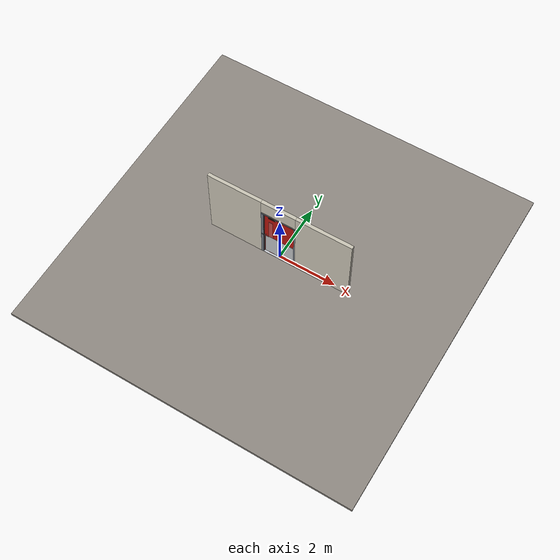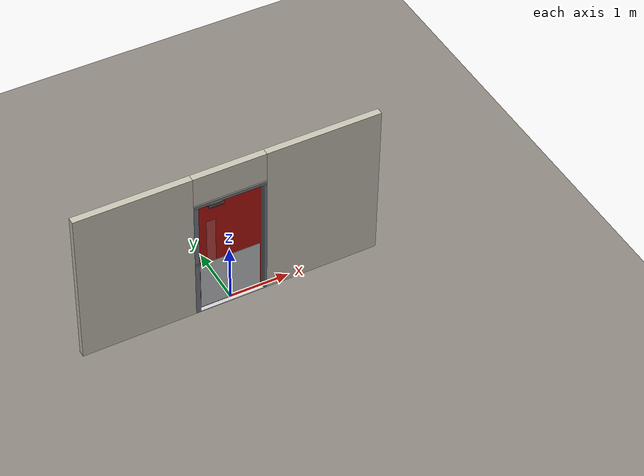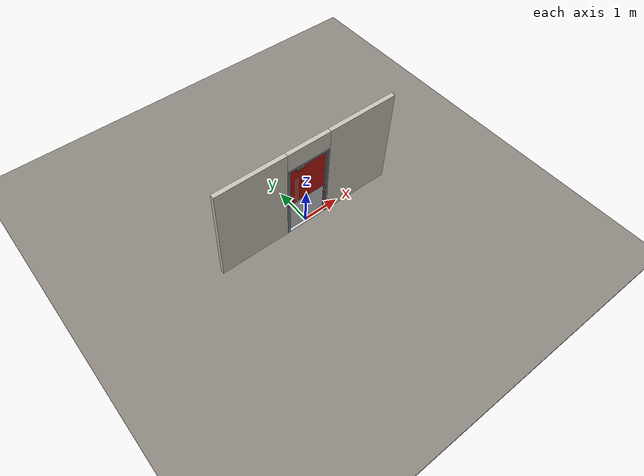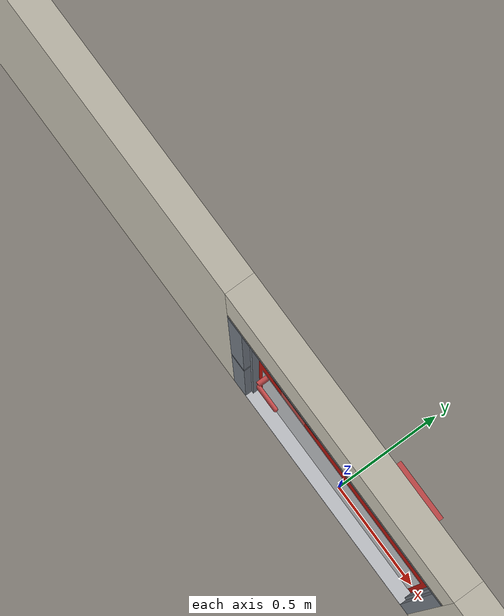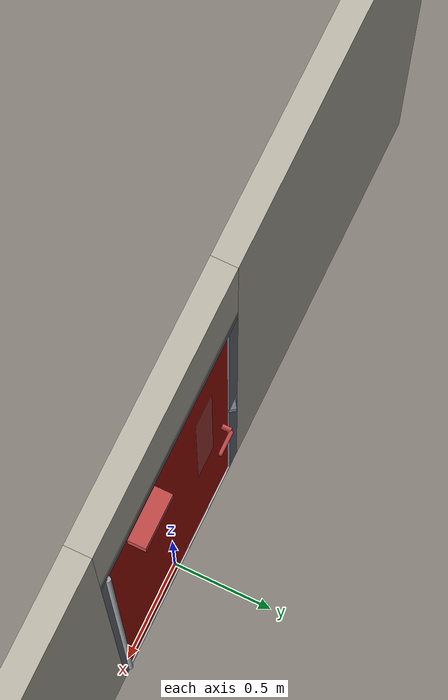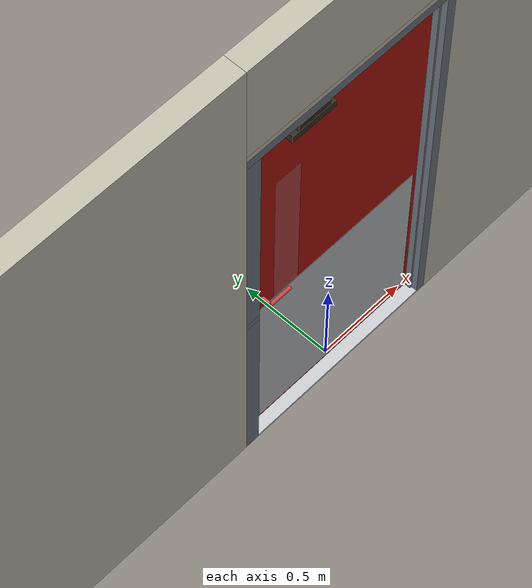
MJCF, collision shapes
<?xml version="1.0" ?>
<mujoco model="db0891_swing_single_simple">
  <compiler angle="radian" meshdir="../../hardware" texturedir="../../textures" autolimits="true" inertiafromgeom="false"/>
  <option timestep="0.002" integrator="implicitfast" cone="elliptic" impratio="10" noslip_iterations="3">
    <flag multiccd="enable"/>
  </option>
  <size memory="16M"/>
  <default>
    <geom condim="4" solref="0.005 1" solimp="0.95 0.99 0.001"/>
    <joint solreflimit="0.005 1" solimplimit="0.95 0.99 0.001"/>
    <tendon solreflimit="0.005 1"/>
    <equality solref="0.002 1"/>
  </default>
  <visual>
    <headlight ambient="0.4 0.4 0.4" diffuse="0.7 0.7 0.7" specular="0.2 0.2 0.2"/>
    <quality shadowsize="4096"/>
    <map znear="0.01" zfar="60"/>
  </visual>
  <asset>
    <mesh name="closer_body_b226fdb10b" file="closer_body_b226fdb10b.obj"/>
    <mesh name="lever_9f02b544cf" file="lever_9f02b544cf.obj"/>
    <material name="mat_floor" rgba="0.55 0.53 0.5 1" specular="0.2" shininess="0.15" reflectance="0"/>
    <material name="mat_wall" rgba="0.78 0.76 0.7 1" specular="0.2" shininess="0.1" reflectance="0"/>
    <material name="mat_leaf" rgba="0.7 0.08 0.05 1" specular="0.23" shininess="0.51" reflectance="0.02"/>
    <material name="mat_glass" rgba="0.85 0.92 0.95 0.25" specular="0.2" shininess="0.95" reflectance="0.1"/>
    <material name="mat_hinge" rgba="0.65 0.66 0.68 1" specular="0.74" shininess="0.5" reflectance="0.36"/>
    <material name="mat_op_nickel_satin" rgba="0.72 0.7 0.66 1" specular="0.8" shininess="0.65" reflectance="0.4"/>
    <material name="mat_trim" rgba="0.85 0.66 0.3 1" specular="0.8" shininess="0.75" reflectance="0.4"/>
    <material name="mat_bolt" rgba="0.85 0.66 0.3 1" specular="0.8" shininess="0.75" reflectance="0.4"/>
    <material name="mat_maglock" rgba="0.22 0.17 0.13 1" specular="0.8" shininess="0.6" reflectance="0.4"/>
    <material name="mat_frame" rgba="0.45 0.48 0.52 1" specular="0.32" shininess="0.6" reflectance="0.08"/>
    <material name="mat_seal" rgba="0.1 0.1 0.1 1" specular="0.2" shininess="0.1" reflectance="0"/>
    <material name="mat_threshold" rgba="0.8 0.81 0.83 1" specular="0.8" shininess="0.6" reflectance="0.4"/>
    <material name="mat_closer" rgba="0.22 0.17 0.13 1" specular="0.8" shininess="0.6" reflectance="0.4"/>
    <material name="mat_kick" rgba="0.75 0.76 0.77 1" specular="0.8" shininess="0.65" reflectance="0.4"/>
    <material name="mat_exit_sign" rgba="0.85 0.1 0.1 1" specular="0.2" shininess="0.6" reflectance="0"/>
    <material name="mat_sign_bracket" rgba="0.8 0.81 0.83 1" specular="0.8" shininess="0.6" reflectance="0.4"/>
    <material name="mat_bumper_stop" rgba="0.08 0.08 0.08 1" specular="0.2" shininess="0.1" reflectance="0"/>
    <material name="mat_stop_base" rgba="0.9 0.9 0.92 1" specular="0.8" shininess="0.9" reflectance="0.4"/>
    <texture name="skybox" type="skybox" builtin="gradient" rgb1="0.6 0.7 0.85" rgb2="0.9 0.92 0.95" width="256" height="256"/>
  </asset>
  <worldbody>
    <light name="sun" pos="1.5 -2.5 4" dir="-0.3 0.5 -0.8" directional="true" diffuse="0.8 0.8 0.8" specular="0.3 0.3 0.3" castshadow="true"/>
    <light name="fill" pos="-1.5 2.5 3" dir="0.3 -0.5 -0.7" directional="true" diffuse="0.35 0.35 0.4" castshadow="false"/>
    <camera name="robot_view" pos="0 -2.666313 1.812087" xyaxes="1 0 0 0 0.26963 0.962964" fovy="52"/>
    <camera name="far_view" pos="0 2.609312 1.812087" xyaxes="-1 0 0 0 -0.26963 0.962964" fovy="52"/>
    <camera name="iso" pos="-2.004737 -2.244263 2.234138" xyaxes="0.741536 -0.670913 0 0.242917 0.268487 0.932151" fovy="46"/>
    <camera name="detail_handle" pos="-0.183 -0.877 1.296" xyaxes="0.97561 0.219512 0 -0.070934 0.315262 0.94635" fovy="38"/>
    <geom name="floor" type="box" size="6 6 0.05" pos="0 0 -0.05" material="mat_floor" group="0" contype="1" conaffinity="1" friction="0.8 0.005 0.0001" density="2400"/>
    <geom name="wall_left" type="box" size="0.9415 0.0575 1.3735" pos="-1.5585 -0.0285 1.3735" material="mat_wall" group="0" contype="1" conaffinity="1" friction="0.6 0.005 0.0001" density="800"/>
    <geom name="wall_right" type="box" size="0.9565 0.0575 1.3735" pos="1.5435 -0.0285 1.3735" material="mat_wall" group="0" contype="1" conaffinity="1" friction="0.6 0.005 0.0001" density="800"/>
    <geom name="wall_header" type="box" size="0.602 0.0575 0.26" pos="-0.015 -0.0285 2.487" material="mat_wall" group="0" contype="1" conaffinity="1" friction="0.6 0.005 0.0001" density="800"/>
    <geom name="leaf_maglock_body" type="box" size="0.125 0.025 0.02" pos="-0.233 -0.057 2.082" material="mat_maglock" group="0" contype="1" conaffinity="1" friction="0.6 0.005 0.0001" density="2000"/>
    <geom name="leaf_maglock_bracket" type="box" size="0.09 0.025 0.0225" pos="-0.233 -0.057 2.1245" material="mat_maglock" group="1" contype="0" conaffinity="0" density="7850"/>
    <geom name="jamb_hinge" type="box" size="0.025 0.0575 1.0735" pos="0.562 -0.0285 1.0735" material="mat_frame" group="0" contype="1" conaffinity="1" friction="0.6 0.005 0.0001" density="300"/>
    <geom name="strike_1016_wall_n" type="box" size="0.04 0.03825 0.0183" pos="-0.577 -0.04775 1.016" material="mat_frame" group="0" contype="1" conaffinity="1" friction="0.6 0.005 0.0001" density="300"/>
    <geom name="strike_1016_wall_p" type="box" size="0.04 0.008 0.0183" pos="-0.577 0.0175 1.016" material="mat_frame" group="0" contype="1" conaffinity="1" friction="0.6 0.005 0.0001" density="300"/>
    <geom name="strike_1016_ramp" type="box" size="0.04 0.018028 0.0183" pos="-0.580282 0.018312 1.016" quat="0.957092 0 0 0.289784" material="mat_frame" group="0" contype="1" conaffinity="1" friction="0.12 0.005 0.0001" density="300"/>
    <geom name="strike_1016_back" type="box" size="0.0285 0.0095 0.0183" pos="-0.5885 0 1.016" material="mat_frame" group="0" contype="1" conaffinity="1" friction="0.6 0.005 0.0001" density="300"/>
    <geom name="jamb_strike_0" type="box" size="0.04 0.0575 0.49885" pos="-0.577 -0.0285 0.49885" material="mat_frame" group="0" contype="1" conaffinity="1" friction="0.6 0.005 0.0001" density="300"/>
    <geom name="jamb_strike_1" type="box" size="0.04 0.0575 0.55635" pos="-0.577 -0.0285 1.59065" material="mat_frame" group="0" contype="1" conaffinity="1" friction="0.6 0.005 0.0001" density="300"/>
    <geom name="jamb_head" type="box" size="0.602 0.0575 0.025" pos="-0.015 -0.0285 2.172" material="mat_frame" group="0" contype="1" conaffinity="1" friction="0.6 0.005 0.0001" density="300"/>
    <geom name="head_stud" type="box" size="0.602 0.0575 0.015" pos="-0.015 -0.0285 2.212" material="mat_wall" group="0" contype="1" conaffinity="1" friction="0.6 0.005 0.0001" density="500"/>
    <geom name="stop_hinge" type="box" size="0.0055 0.016 1.0735" pos="0.5315 -0.0385 1.0735" material="mat_frame" group="0" contype="1" conaffinity="1" friction="0.6 0.005 0.0001" density="300"/>
    <geom name="stop_strike" type="box" size="0.0055 0.016 1.0735" pos="-0.5315 -0.0385 1.0735" material="mat_frame" group="0" contype="1" conaffinity="1" friction="0.6 0.005 0.0001" density="300"/>
    <geom name="stop_head" type="box" size="0.537 0.016 0.0055" pos="0 -0.0385 2.1415" material="mat_frame" group="0" contype="1" conaffinity="1" friction="0.6 0.005 0.0001" density="300"/>
    <geom name="seal_hinge" type="box" size="0.004 0.0025 1.0735" pos="0.534 -0.0245 1.0735" material="mat_seal" group="1" contype="0" conaffinity="0" density="1100"/>
    <geom name="seal_strike" type="box" size="0.004 0.0025 1.0735" pos="-0.534 -0.0245 1.0735" material="mat_seal" group="1" contype="0" conaffinity="0" density="1100"/>
    <geom name="seal_head" type="box" size="0.517 0.0025 0.008" pos="0 -0.0245 2.135" material="mat_seal" group="1" contype="0" conaffinity="0" density="1100"/>
    <geom name="threshold" type="box" size="0.587 0.0575 0.0065" pos="0 -0.0285 0.0065" material="mat_threshold" group="0" contype="1" conaffinity="1" friction="0.5 0.005 0.0001" density="2700"/>
    <geom name="door_stop_base" type="cylinder" size="0.022 0.003" pos="0.55 0.93595 0.003" material="mat_stop_base" group="0" contype="1" conaffinity="1" friction="0.6 0.005 0.0001" density="7850"/>
    <geom name="door_stop_post" type="cylinder" size="0.012 0.0255" pos="0.55 0.93595 0.0315" material="mat_stop_base" group="0" contype="1" conaffinity="1" friction="0.6 0.005 0.0001" density="7850"/>
    <geom name="door_stop_bumper" type="cylinder" size="0.022 0.02" pos="0.55 0.93595 0.077" material="mat_bumper_stop" group="0" contype="1" conaffinity="1" friction="0.6 0.005 0.0001" density="1100"/>
    <site name="approach_point" pos="0 -1.5 0" quat="1 0 0 0" size="0.05" rgba="0.2 0.9 0.2 0.5" group="4"/>
    <site name="goal_point" pos="0 1.5 0" quat="1 0 0 0" size="0.05" rgba="0.2 0.9 0.2 0.5" group="4"/>
    <site name="door_plane_center" pos="0 0 1.0735" quat="1 0 0 0" size="0.02" rgba="0.2 0.9 0.2 0.5" group="4"/>
    <body name="leaf" pos="0.537 0 0">
      <inertial pos="-0.49776 0.00348 1.095292" mass="79.13314" quat="-0.494138 -0.478835 -0.513066 0.513135" diaginertia="7.540670201 34.621727549 42.088454226"/>
      <joint name="leaf_hinge" type="hinge" axis="0 0 -1" pos="-0.003 0.029 0" limited="true" range="0 1.570796" solreflimit="0.02 1" damping="10.49954" frictionloss="3.864023" stiffness="15.234311" springref="-3.060197" armature="0.02"/>
      <geom name="leaf_slab" type="box" size="0.5335 0.022 1.063" pos="-0.5365 0 1.08" material="mat_leaf" group="0" contype="1" conaffinity="1" friction="0.4 0.005 0.0001" density="1"/>
      <geom name="leaf_glass_0" type="box" size="0.075 0.0228 0.4252" pos="-0.84763 0 1.33512" material="mat_glass" group="1" contype="0" conaffinity="0" density="1"/>
      <geom name="hinge_continuous" type="cylinder" size="0.0136 1.053" pos="-0.003 0.029 1.08" material="mat_hinge" group="1" contype="0" conaffinity="0" density="2700"/>
      <geom name="leaf_latch_bolt_faceplate" type="box" size="0.0006 0.014 0.0283" pos="-1.0694 0 1.016" material="mat_bolt" group="1" contype="0" conaffinity="0" density="8500"/>
      <geom name="leaf_maglock_armature" type="box" size="0.09 0.005 0.02" pos="-0.77 -0.027 2.082" material="mat_maglock" group="1" contype="0" conaffinity="0" density="7800"/>
      <geom name="closer_body" type="mesh" mesh="closer_body_b226fdb10b" pos="-0.3 0.022 2.046" quat="0 0 0.707107 0.707107" material="mat_closer" group="1" contype="0" conaffinity="0" density="2000"/>
      <geom name="closer_body_col" type="box" size="0.12 0.04 0.03" pos="-0.3 0.062 2.046" material="mat_closer" group="3" contype="1" conaffinity="1" rgba="0.8 0.3 0.3 0.25" friction="0.6 0.005 0.0001" density="2000"/>
      <geom name="armor_plate" type="box" size="0.5035 0.0008 0.45" pos="-0.5365 -0.0228 0.477" material="mat_kick" group="2" contype="0" conaffinity="0" density="7900"/>
      <site name="leaf_edge_mid" pos="-1.07 0 1.063" quat="1 0 0 0" size="0.02" rgba="0.2 0.9 0.2 0.5" group="4"/>
      <body name="leaf_handle" pos="-1 0 1.016">
        <inertial pos="0.030188 0 0" mass="0.924918" quat="0.707107 0 0 -0.707107" diaginertia="0.001725188 0.003587995 0.005135939"/>
        <joint name="leaf_handle_hinge" type="hinge" axis="0 1 0" limited="true" range="0 0.96" damping="0.245624" frictionloss="0.048" stiffness="1.2" springref="-0.458333" armature="0.01"/>
        <geom name="leaf_handle_lever_n" type="mesh" mesh="lever_9f02b544cf" pos="0 -0.022 0" quat="0 0 -0.707107 0.707107" material="mat_op_nickel_satin" group="1" contype="0" conaffinity="0" density="3000"/>
        <geom name="leaf_handle_lever_col_n" type="capsule" size="0.0095 0.053" pos="0.0625 -0.077 0" quat="0.707107 0 0.707107 0" material="mat_op_nickel_satin" group="3" contype="1" conaffinity="1" rgba="0.8 0.3 0.3 0.25" friction="0.7 0.01 0.0001" density="3000"/>
        <geom name="leaf_handle_hub_col_n" type="cylinder" size="0.012 0.022" pos="0 -0.052 0" quat="0.707107 -0.707107 0 0" material="mat_op_nickel_satin" group="3" contype="1" conaffinity="1" rgba="0.8 0.3 0.3 0.25" friction="0.6 0.005 0.0001" density="3000"/>
        <geom name="leaf_handle_lever_p" type="mesh" mesh="lever_9f02b544cf" pos="0 0.022 0" quat="0 0 0.707107 0.707107" material="mat_op_nickel_satin" group="1" contype="0" conaffinity="0" density="3000"/>
        <geom name="leaf_handle_lever_col_p" type="capsule" size="0.0095 0.053" pos="0.0625 0.077 0" quat="0.707107 0 0.707107 0" material="mat_op_nickel_satin" group="3" contype="1" conaffinity="1" rgba="0.8 0.3 0.3 0.25" friction="0.7 0.01 0.0001" density="3000"/>
        <geom name="leaf_handle_hub_col_p" type="cylinder" size="0.012 0.022" pos="0 0.052 0" quat="0.707107 -0.707107 0 0" material="mat_op_nickel_satin" group="3" contype="1" conaffinity="1" rgba="0.8 0.3 0.3 0.25" friction="0.6 0.005 0.0001" density="3000"/>
        <site name="leaf_handle_grip_n" pos="0.1 -0.077 0" quat="1 0 0 0" size="0.012" rgba="0.2 0.9 0.2 0.5" group="4"/>
        <site name="leaf_handle_grip_p" pos="0.1 0.077 0" quat="1 0 0 0" size="0.012" rgba="0.2 0.9 0.2 0.5" group="4"/>
      </body>
      <body name="leaf_latch_bolt" pos="-1.07 0 1.016">
        <inertial pos="0.0055 0 0" mass="0.074627" quat="0.92388 0.382683 0 0" diaginertia="0.000002271 0.000013255 0.000013255"/>
        <joint name="leaf_latch_bolt_slide" type="slide" axis="1 0 0" limited="true" range="0 0.019" damping="2" frictionloss="0.3" stiffness="600" springref="-0.01" armature="0.1"/>
        <geom name="leaf_latch_bolt_capsule" type="capsule" size="0.008 0.0165" pos="0.0055 0 0" quat="0.707107 0 -0.707107 0" material="mat_bolt" group="0" contype="1" conaffinity="1" friction="0.2 0.005 0.0001" density="8500"/>
      </body>
    </body>
  </worldbody>
  <tendon>
    <fixed name="leaf_latch_bolt_coupling" limited="true" range="0 10">
      <joint joint="leaf_latch_bolt_slide" coef="1"/>
      <joint joint="leaf_handle_hinge" coef="-0.020879"/>
    </fixed>
  </tendon>
  <equality>
    <weld name="leaf_maglock" body1="leaf" body2="world" active="true"/>
  </equality>
  <sensor>
    <jointpos name="leaf_hinge_pos" joint="leaf_hinge"/>
    <jointvel name="leaf_hinge_vel" joint="leaf_hinge"/>
    <jointpos name="leaf_handle_hinge_pos" joint="leaf_handle_hinge"/>
    <jointvel name="leaf_handle_hinge_vel" joint="leaf_handle_hinge"/>
    <jointpos name="leaf_latch_bolt_slide_pos" joint="leaf_latch_bolt_slide"/>
    <jointvel name="leaf_latch_bolt_slide_vel" joint="leaf_latch_bolt_slide"/>
  </sensor>
</mujoco>
